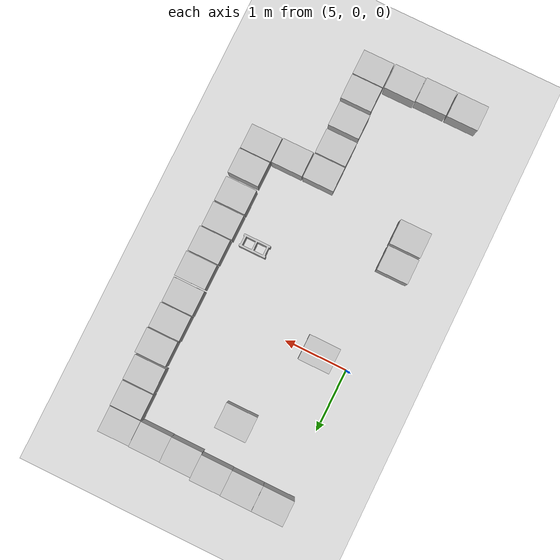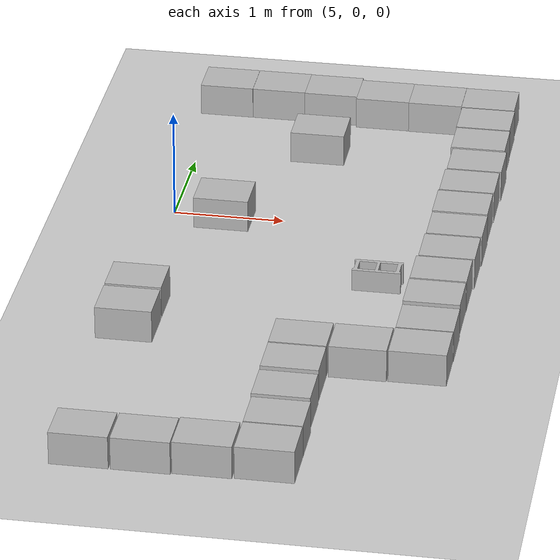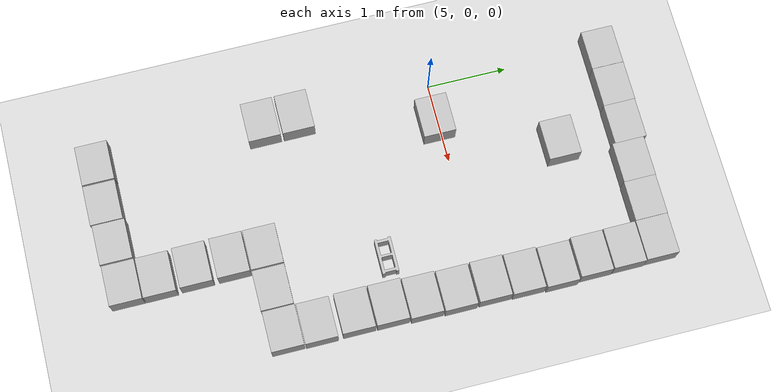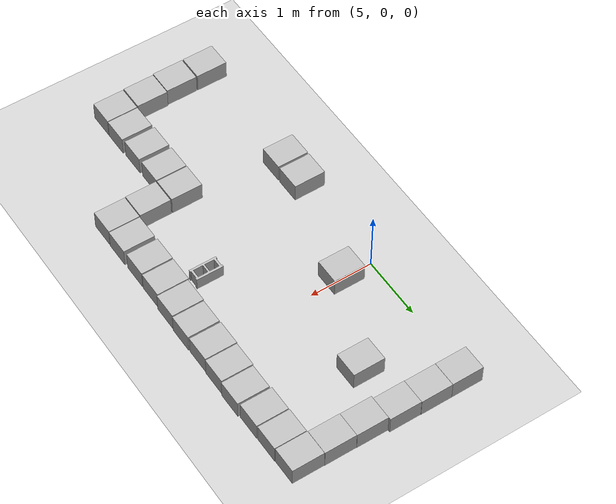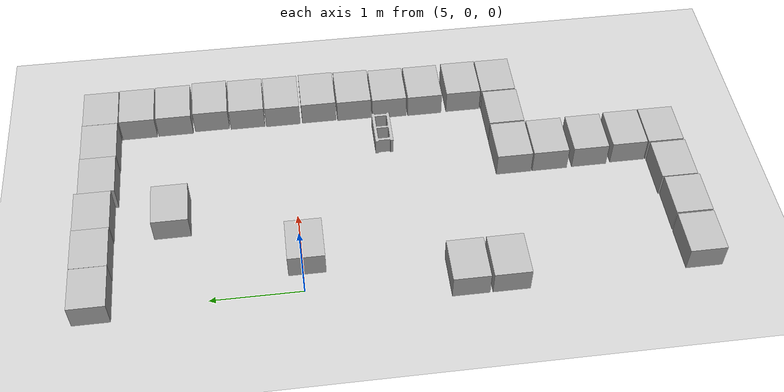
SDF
<sdf version="1.7">
 <world name="default">
  <model name="ground_plane">
   <static>1</static>
   <link name="link">
    <collision name="collision">
     <geometry><plane><normal>0 0 1</normal><size>100 100</size></plane></geometry>
     <surface>
      <contact><collide_bitmask>65535</collide_bitmask></contact>
      <friction><ode><mu>100</mu><mu2>50</mu2></ode></friction>
     </surface>
    </collision>
    <visual name="visual">
     <cast_shadows>0</cast_shadows>
     <geometry><plane><normal>0 0 1</normal><size>100 100</size></plane></geometry>
     <material>
      <script><uri>file://media/materials/scripts/gazebo.material</uri><name>Gazebo/Grey</name></script>
     </material>
    </visual>
   </link>
  </model>
  <model name="cardboard_box_19">
   <pose>5.11664 2.20462 0.149 -0 -0 -0.000112</pose>
   <link name="link">
    <inertial>
     <mass>2</mass>
     <inertia>
      <ixx>0.0416667</ixx>
      <ixy>0</ixy>
      <ixz>0</ixz>
      <iyy>0.0566667</iyy>
      <iyz>0</iyz>
      <izz>0.0683333</izz>
     </inertia>
    </inertial>
    <collision name="collision">
     <geometry><box><size>0.5 0.4 0.3</size></box></geometry>
     <surface>
      <friction><ode><mu>1</mu><mu2>1</mu2></ode></friction>
      <contact><ode><kp>1e+07</kp><kd>1</kd><min_depth>0.001</min_depth><max_vel>0.1</max_vel></ode></contact>
     </surface>
    </collision>
    <visual name="visual">
     <pose>0 0 -0.15 0 -0 0</pose>
     <geometry>
      <mesh><uri>model://cardboard_box/meshes/cardboard_box.dae</uri><scale>1.25932 1.00745 0.755591</scale></mesh>
     </geometry>
    </visual>
   </link>
  </model>
  <model name="cardboard_box_23">
   <pose>5.46744 -0.044152 0.149 0 0 -0.002165</pose>
   <link name="link">
    <inertial>
     <mass>2</mass>
     <inertia>
      <ixx>0.0416667</ixx>
      <ixy>0</ixy>
      <ixz>0</ixz>
      <iyy>0.0566667</iyy>
      <iyz>0</iyz>
      <izz>0.0683333</izz>
     </inertia>
    </inertial>
    <collision name="collision">
     <geometry><box><size>0.5 0.4 0.3</size></box></geometry>
     <surface>
      <friction><ode><mu>1</mu><mu2>1</mu2></ode></friction>
      <contact><ode><kp>1e+07</kp><kd>1</kd><min_depth>0.001</min_depth><max_vel>0.1</max_vel></ode></contact>
     </surface>
    </collision>
    <visual name="visual">
     <pose>0 0 -0.15 0 -0 0</pose>
     <geometry>
      <mesh><uri>model://cardboard_box/meshes/cardboard_box.dae</uri><scale>1.25932 1.00745 0.755591</scale></mesh>
     </geometry>
    </visual>
   </link>
  </model>
  <model name="cardboard_box_24">
   <pose>5.61747 2.20474 0.149 0 0 -0.000135</pose>
   <link name="link">
    <inertial>
     <mass>2</mass>
     <inertia>
      <ixx>0.0416667</ixx>
      <ixy>0</ixy>
      <ixz>0</ixz>
      <iyy>0.0566667</iyy>
      <iyz>0</iyz>
      <izz>0.0683333</izz>
     </inertia>
    </inertial>
    <collision name="collision">
     <geometry><box><size>0.5 0.4 0.3</size></box></geometry>
     <surface>
      <friction><ode><mu>1</mu><mu2>1</mu2></ode></friction>
      <contact><ode><kp>1e+07</kp><kd>1</kd><min_depth>0.001</min_depth><max_vel>0.1</max_vel></ode></contact>
     </surface>
    </collision>
    <visual name="visual">
     <pose>0 0 -0.15 0 -0 0</pose>
     <geometry>
      <mesh><uri>model://cardboard_box/meshes/cardboard_box.dae</uri><scale>1.25932 1.00745 0.755591</scale></mesh>
     </geometry>
    </visual>
   </link>
  </model>
  <model name="cardboard_box_25">
   <pose>6.11733 2.19989 0.149 0 -0 -0.000167</pose>
   <link name="link">
    <inertial>
     <mass>2</mass>
     <inertia>
      <ixx>0.0416667</ixx>
      <ixy>0</ixy>
      <ixz>0</ixz>
      <iyy>0.0566667</iyy>
      <iyz>0</iyz>
      <izz>0.0683333</izz>
     </inertia>
    </inertial>
    <collision name="collision">
     <geometry><box><size>0.5 0.4 0.3</size></box></geometry>
     <surface>
      <friction><ode><mu>1</mu><mu2>1</mu2></ode></friction>
      <contact><ode><kp>1e+07</kp><kd>1</kd><min_depth>0.001</min_depth><max_vel>0.1</max_vel></ode></contact>
     </surface>
    </collision>
    <visual name="visual">
     <pose>0 0 -0.15 0 -0 0</pose>
     <geometry>
      <mesh><uri>model://cardboard_box/meshes/cardboard_box.dae</uri><scale>1.25932 1.00745 0.755591</scale></mesh>
     </geometry>
    </visual>
   </link>
  </model>
  <model name="cardboard_box_27">
   <pose>6.61648 2.16214 0.149 0 0 -0.00019</pose>
   <link name="link">
    <inertial>
     <mass>2</mass>
     <inertia>
      <ixx>0.0416667</ixx>
      <ixy>0</ixy>
      <ixz>0</ixz>
      <iyy>0.0566667</iyy>
      <iyz>0</iyz>
      <izz>0.0683333</izz>
     </inertia>
    </inertial>
    <collision name="collision">
     <geometry><box><size>0.5 0.4 0.3</size></box></geometry>
     <surface>
      <friction><ode><mu>1</mu><mu2>1</mu2></ode></friction>
      <contact><ode><kp>1e+07</kp><kd>1</kd><min_depth>0.001</min_depth><max_vel>0.1</max_vel></ode></contact>
     </surface>
    </collision>
    <visual name="visual">
     <pose>0 0 -0.15 0 -0 0</pose>
     <geometry>
      <mesh><uri>model://cardboard_box/meshes/cardboard_box.dae</uri><scale>1.25932 1.00745 0.755591</scale></mesh>
     </geometry>
    </visual>
   </link>
  </model>
  <model name="cardboard_box_28">
   <pose>7.11635 2.15737 0.149 -0 -0 -0.000159</pose>
   <link name="link">
    <inertial>
     <mass>2</mass>
     <inertia>
      <ixx>0.0416667</ixx>
      <ixy>0</ixy>
      <ixz>0</ixz>
      <iyy>0.0566667</iyy>
      <iyz>0</iyz>
      <izz>0.0683333</izz>
     </inertia>
    </inertial>
    <collision name="collision">
     <geometry><box><size>0.5 0.4 0.3</size></box></geometry>
     <surface>
      <friction><ode><mu>1</mu><mu2>1</mu2></ode></friction>
      <contact><ode><kp>1e+07</kp><kd>1</kd><min_depth>0.001</min_depth><max_vel>0.1</max_vel></ode></contact>
     </surface>
    </collision>
    <visual name="visual">
     <pose>0 0 -0.15 0 -0 0</pose>
     <geometry>
      <mesh><uri>model://cardboard_box/meshes/cardboard_box.dae</uri><scale>1.25932 1.00745 0.755591</scale></mesh>
     </geometry>
    </visual>
   </link>
  </model>
  <model name="cardboard_box_29">
   <pose>7.61722 2.15258 0.149 0 0 -0.000135</pose>
   <link name="link">
    <inertial>
     <mass>2</mass>
     <inertia>
      <ixx>0.0416667</ixx>
      <ixy>0</ixy>
      <ixz>0</ixz>
      <iyy>0.0566667</iyy>
      <iyz>0</iyz>
      <izz>0.0683333</izz>
     </inertia>
    </inertial>
    <collision name="collision">
     <geometry><box><size>0.5 0.4 0.3</size></box></geometry>
     <surface>
      <friction><ode><mu>1</mu><mu2>1</mu2></ode></friction>
      <contact><ode><kp>1e+07</kp><kd>1</kd><min_depth>0.001</min_depth><max_vel>0.1</max_vel></ode></contact>
     </surface>
    </collision>
    <visual name="visual">
     <pose>0 0 -0.15 0 -0 0</pose>
     <geometry>
      <mesh><uri>model://cardboard_box/meshes/cardboard_box.dae</uri><scale>1.25932 1.00745 0.755591</scale></mesh>
     </geometry>
    </visual>
   </link>
  </model>
  <model name="cardboard_box_30">
   <pose>7.62325 1.74299 0.149 0 -0 0</pose>
   <link name="link">
    <inertial>
     <mass>2</mass>
     <inertia>
      <ixx>0.0416667</ixx>
      <ixy>0</ixy>
      <ixz>0</ixz>
      <iyy>0.0566667</iyy>
      <iyz>0</iyz>
      <izz>0.0683333</izz>
     </inertia>
    </inertial>
    <collision name="collision">
     <geometry><box><size>0.5 0.4 0.3</size></box></geometry>
     <surface>
      <friction><ode><mu>1</mu><mu2>1</mu2></ode></friction>
      <contact><ode><kp>1e+07</kp><kd>1</kd><min_depth>0.001</min_depth><max_vel>0.1</max_vel></ode></contact>
     </surface>
    </collision>
    <visual name="visual">
     <pose>0 0 -0.15 0 -0 0</pose>
     <geometry>
      <mesh><uri>model://cardboard_box/meshes/cardboard_box.dae</uri><scale>1.25932 1.00745 0.755591</scale></mesh>
     </geometry>
    </visual>
   </link>
  </model>
  <model name="cardboard_box_31">
   <pose>7.62793 1.32849 0.149 0 -0 0</pose>
   <link name="link">
    <inertial>
     <mass>2</mass>
     <inertia>
      <ixx>0.0416667</ixx>
      <ixy>0</ixy>
      <ixz>0</ixz>
      <iyy>0.0566667</iyy>
      <iyz>0</iyz>
      <izz>0.0683333</izz>
     </inertia>
    </inertial>
    <collision name="collision">
     <geometry><box><size>0.5 0.4 0.3</size></box></geometry>
     <surface>
      <friction><ode><mu>1</mu><mu2>1</mu2></ode></friction>
      <contact><ode><kp>1e+07</kp><kd>1</kd><min_depth>0.001</min_depth><max_vel>0.1</max_vel></ode></contact>
     </surface>
    </collision>
    <visual name="visual">
     <pose>0 0 -0.15 0 -0 0</pose>
     <geometry>
      <mesh><uri>model://cardboard_box/meshes/cardboard_box.dae</uri><scale>1.25932 1.00745 0.755591</scale></mesh>
     </geometry>
    </visual>
   </link>
  </model>
  <model name="cardboard_box_22">
   <pose>6.12158 1.3691 0.149 0 -0 0</pose>
   <link name="link">
    <inertial>
     <mass>2</mass>
     <inertia>
      <ixx>0.0416667</ixx>
      <ixy>0</ixy>
      <ixz>0</ixz>
      <iyy>0.0566667</iyy>
      <iyz>0</iyz>
      <izz>0.0683333</izz>
     </inertia>
    </inertial>
    <collision name="collision">
     <geometry><box><size>0.5 0.4 0.3</size></box></geometry>
     <surface>
      <friction><ode><mu>1</mu><mu2>1</mu2></ode></friction>
      <contact><ode><kp>1e+07</kp><kd>1</kd><min_depth>0.001</min_depth><max_vel>0.1</max_vel></ode></contact>
     </surface>
    </collision>
    <visual name="visual">
     <pose>0 0 -0.15 0 -0 0</pose>
     <geometry>
      <mesh><uri>model://cardboard_box/meshes/cardboard_box.dae</uri><scale>1.25932 1.00745 0.755591</scale></mesh>
     </geometry>
    </visual>
   </link>
  </model>
  <model name="cardboard_box_32">
   <pose>7.64853 0.903612 0.149 0 -0 0</pose>
   <link name="link">
    <inertial>
     <mass>2</mass>
     <inertia>
      <ixx>0.0416667</ixx>
      <ixy>0</ixy>
      <ixz>0</ixz>
      <iyy>0.0566667</iyy>
      <iyz>0</iyz>
      <izz>0.0683333</izz>
     </inertia>
    </inertial>
    <collision name="collision">
     <geometry><box><size>0.5 0.4 0.3</size></box></geometry>
     <surface>
      <friction><ode><mu>1</mu><mu2>1</mu2></ode></friction>
      <contact><ode><kp>1e+07</kp><kd>1</kd><min_depth>0.001</min_depth><max_vel>0.1</max_vel></ode></contact>
     </surface>
    </collision>
    <visual name="visual">
     <pose>0 0 -0.15 0 -0 0</pose>
     <geometry>
      <mesh><uri>model://cardboard_box/meshes/cardboard_box.dae</uri><scale>1.25932 1.00745 0.755591</scale></mesh>
     </geometry>
    </visual>
   </link>
  </model>
  <model name="cardboard_box_33">
   <pose>7.63463 0.487643 0.149 0 -0 0</pose>
   <link name="link">
    <inertial>
     <mass>2</mass>
     <inertia>
      <ixx>0.0416667</ixx>
      <ixy>0</ixy>
      <ixz>0</ixz>
      <iyy>0.0566667</iyy>
      <iyz>0</iyz>
      <izz>0.0683333</izz>
     </inertia>
    </inertial>
    <collision name="collision">
     <geometry><box><size>0.5 0.4 0.3</size></box></geometry>
     <surface>
      <friction><ode><mu>1</mu><mu2>1</mu2></ode></friction>
      <contact><ode><kp>1e+07</kp><kd>1</kd><min_depth>0.001</min_depth><max_vel>0.1</max_vel></ode></contact>
     </surface>
    </collision>
    <visual name="visual">
     <pose>0 0 -0.15 0 -0 0</pose>
     <geometry>
      <mesh><uri>model://cardboard_box/meshes/cardboard_box.dae</uri><scale>1.25932 1.00745 0.755591</scale></mesh>
     </geometry>
    </visual>
   </link>
  </model>
  <model name="cardboard_box_37">
   <pose>7.62607 0.072854 0.149 0 -0 0</pose>
   <link name="link">
    <inertial>
     <mass>2</mass>
     <inertia>
      <ixx>0.0416667</ixx>
      <ixy>0</ixy>
      <ixz>0</ixz>
      <iyy>0.0566667</iyy>
      <iyz>0</iyz>
      <izz>0.0683333</izz>
     </inertia>
    </inertial>
    <collision name="collision">
     <geometry><box><size>0.5 0.4 0.3</size></box></geometry>
     <surface>
      <friction><ode><mu>1</mu><mu2>1</mu2></ode></friction>
      <contact><ode><kp>1e+07</kp><kd>1</kd><min_depth>0.001</min_depth><max_vel>0.1</max_vel></ode></contact>
     </surface>
    </collision>
    <visual name="visual">
     <pose>0 0 -0.15 0 -0 0</pose>
     <geometry>
      <mesh><uri>model://cardboard_box/meshes/cardboard_box.dae</uri><scale>1.25932 1.00745 0.755591</scale></mesh>
     </geometry>
    </visual>
   </link>
  </model>
  <model name="cardboard_box_38">
   <pose>7.63121 -0.351382 0.149 0 -0 0</pose>
   <link name="link">
    <inertial>
     <mass>2</mass>
     <inertia>
      <ixx>0.0416667</ixx>
      <ixy>0</ixy>
      <ixz>0</ixz>
      <iyy>0.0566667</iyy>
      <iyz>0</iyz>
      <izz>0.0683333</izz>
     </inertia>
    </inertial>
    <collision name="collision">
     <geometry><box><size>0.5 0.4 0.3</size></box></geometry>
     <surface>
      <friction><ode><mu>1</mu><mu2>1</mu2></ode></friction>
      <contact><ode><kp>1e+07</kp><kd>1</kd><min_depth>0.001</min_depth><max_vel>0.1</max_vel></ode></contact>
     </surface>
    </collision>
    <visual name="visual">
     <pose>0 0 -0.15 0 -0 0</pose>
     <geometry>
      <mesh><uri>model://cardboard_box/meshes/cardboard_box.dae</uri><scale>1.25932 1.00745 0.755591</scale></mesh>
     </geometry>
    </visual>
   </link>
  </model>
  <model name="cardboard_box_39">
   <pose>7.62089 -0.767864 0.149 0 -0 0</pose>
   <link name="link">
    <inertial>
     <mass>2</mass>
     <inertia>
      <ixx>0.0416667</ixx>
      <ixy>0</ixy>
      <ixz>0</ixz>
      <iyy>0.0566667</iyy>
      <iyz>0</iyz>
      <izz>0.0683333</izz>
     </inertia>
    </inertial>
    <collision name="collision">
     <geometry><box><size>0.5 0.4 0.3</size></box></geometry>
     <surface>
      <friction><ode><mu>1</mu><mu2>1</mu2></ode></friction>
      <contact><ode><kp>1e+07</kp><kd>1</kd><min_depth>0.001</min_depth><max_vel>0.1</max_vel></ode></contact>
     </surface>
    </collision>
    <visual name="visual">
     <pose>0 0 -0.15 0 -0 0</pose>
     <geometry>
      <mesh><uri>model://cardboard_box/meshes/cardboard_box.dae</uri><scale>1.25932 1.00745 0.755591</scale></mesh>
     </geometry>
    </visual>
   </link>
  </model>
  <model name="cardboard_box_44">
   <pose>7.60276 -1.18176 0.149 0 -0 0</pose>
   <link name="link">
    <inertial>
     <mass>2</mass>
     <inertia>
      <ixx>0.0416667</ixx>
      <ixy>0</ixy>
      <ixz>0</ixz>
      <iyy>0.0566667</iyy>
      <iyz>0</iyz>
      <izz>0.0683333</izz>
     </inertia>
    </inertial>
    <collision name="collision">
     <geometry><box><size>0.5 0.4 0.3</size></box></geometry>
     <surface>
      <friction><ode><mu>1</mu><mu2>1</mu2></ode></friction>
      <contact><ode><kp>1e+07</kp><kd>1</kd><min_depth>0.001</min_depth><max_vel>0.1</max_vel></ode></contact>
     </surface>
    </collision>
    <visual name="visual">
     <pose>0 0 -0.15 0 -0 0</pose>
     <geometry>
      <mesh><uri>model://cardboard_box/meshes/cardboard_box.dae</uri><scale>1.25932 1.00745 0.755591</scale></mesh>
     </geometry>
    </visual>
   </link>
  </model>
  <model name="cardboard_box_51">
   <pose>7.60019 -1.60081 0.149 0 -0 0</pose>
   <link name="link">
    <inertial>
     <mass>2</mass>
     <inertia>
      <ixx>0.0416667</ixx>
      <ixy>0</ixy>
      <ixz>0</ixz>
      <iyy>0.0566667</iyy>
      <iyz>0</iyz>
      <izz>0.0683333</izz>
     </inertia>
    </inertial>
    <collision name="collision">
     <geometry><box><size>0.5 0.4 0.3</size></box></geometry>
     <surface>
      <friction><ode><mu>1</mu><mu2>1</mu2></ode></friction>
      <contact><ode><kp>1e+07</kp><kd>1</kd><min_depth>0.001</min_depth><max_vel>0.1</max_vel></ode></contact>
     </surface>
    </collision>
    <visual name="visual">
     <pose>0 0 -0.15 0 -0 0</pose>
     <geometry>
      <mesh><uri>model://cardboard_box/meshes/cardboard_box.dae</uri><scale>1.25932 1.00745 0.755591</scale></mesh>
     </geometry>
    </visual>
   </link>
  </model>
  <model name="cardboard_box_57">
   <pose>7.60797 -2.06127 0.149 0 -0 0</pose>
   <link name="link">
    <inertial>
     <mass>2</mass>
     <inertia>
      <ixx>0.0416667</ixx>
      <ixy>0</ixy>
      <ixz>0</ixz>
      <iyy>0.0566667</iyy>
      <iyz>0</iyz>
      <izz>0.0683333</izz>
     </inertia>
    </inertial>
    <collision name="collision">
     <geometry><box><size>0.5 0.4 0.3</size></box></geometry>
     <surface>
      <friction><ode><mu>1</mu><mu2>1</mu2></ode></friction>
      <contact><ode><kp>1e+07</kp><kd>1</kd><min_depth>0.001</min_depth><max_vel>0.1</max_vel></ode></contact>
     </surface>
    </collision>
    <visual name="visual">
     <pose>0 0 -0.15 0 -0 0</pose>
     <geometry>
      <mesh><uri>model://cardboard_box/meshes/cardboard_box.dae</uri><scale>1.25932 1.00745 0.755591</scale></mesh>
     </geometry>
    </visual>
   </link>
  </model>
  <model name="cinder_block">
   <link name="link">
    <inertial>
     <pose>0 0 0.1016 0 -0 0</pose>
     <mass>5</mass>
     <inertia>
      <ixx>0.028705</ixx>
      <ixy>0</ixy>
      <iyy>0.073708</iyy>
      <ixz>0</ixz>
      <iyz>0</iyz>
      <izz>0.06908</izz>
     </inertia>
    </inertial>
    <visual name="visual">
     <geometry><mesh><uri>model://cinder_block/meshes/cinder_block.dae</uri></mesh></geometry>
    </visual>
    <collision name="left">
     <pose>0 -0.08465 0.1016 0 -0 0</pose>
     <geometry><box><size>0.43495 0.0339 0.2032</size></box></geometry>
     <surface>
      <contact><ode><max_vel>0.1</max_vel><min_depth>0.001</min_depth></ode></contact>
      <friction><ode><mu>1</mu><mu2>1</mu2></ode></friction>
     </surface>
    </collision>
    <collision name="right">
     <pose>0 0.08465 0.1016 0 -0 0</pose>
     <geometry><box><size>0.43495 0.0339 0.2032</size></box></geometry>
     <surface>
      <contact><ode><max_vel>0.1</max_vel><min_depth>0.001</min_depth></ode></contact>
      <friction><ode><mu>1</mu><mu2>1</mu2></ode></friction>
     </surface>
    </collision>
    <collision name="front">
     <pose>0.18625 0 0.1016 0 -0 0</pose>
     <geometry><box><size>0.0339 0.1354 0.203</size></box></geometry>
     <surface>
      <contact><ode><max_vel>0.1</max_vel><min_depth>0.001</min_depth></ode></contact>
      <friction><ode><mu>1</mu><mu2>1</mu2></ode></friction>
     </surface>
    </collision>
    <collision name="middle">
     <pose>0 0 0.1016 0 -0 0</pose>
     <geometry><box><size>0.0339 0.1354 0.203</size></box></geometry>
     <surface>
      <contact><ode><max_vel>0.1</max_vel><min_depth>0.001</min_depth></ode></contact>
      <friction><ode><mu>1</mu><mu2>1</mu2></ode></friction>
     </surface>
    </collision>
    <collision name="back">
     <pose>-0.18625 0 0.1016 0 -0 0</pose>
     <geometry><box><size>0.0339 0.1354 0.203</size></box></geometry>
     <surface>
      <contact><ode><max_vel>0.1</max_vel><min_depth>0.001</min_depth></ode></contact>
      <friction><ode><mu>1</mu><mu2>1</mu2></ode></friction>
     </surface>
    </collision>
   </link>
   <pose>7.02389 -1.05977 -7e-06 1.7e-05 -2.4e-05 -3e-06</pose>
  </model>
  <model name="cardboard_box_34">
   <pose>7.60369 -2.47223 0.149 0 -0 0</pose>
   <link name="link">
    <inertial>
     <mass>2</mass>
     <inertia>
      <ixx>0.0416667</ixx>
      <ixy>0</ixy>
      <ixz>0</ixz>
      <iyy>0.0566667</iyy>
      <iyz>0</iyz>
      <izz>0.0683333</izz>
     </inertia>
    </inertial>
    <collision name="collision">
     <geometry><box><size>0.5 0.4 0.3</size></box></geometry>
     <surface>
      <friction><ode><mu>1</mu><mu2>1</mu2></ode></friction>
      <contact><ode><kp>1e+07</kp><kd>1</kd><min_depth>0.001</min_depth><max_vel>0.1</max_vel></ode></contact>
     </surface>
    </collision>
    <visual name="visual">
     <pose>0 0 -0.15 0 -0 0</pose>
     <geometry>
      <mesh><uri>model://cardboard_box/meshes/cardboard_box.dae</uri><scale>1.25932 1.00745 0.755591</scale></mesh>
     </geometry>
    </visual>
   </link>
  </model>
  <model name="cardboard_box_35">
   <pose>7.09143 -2.47971 0.149 0 -0 0</pose>
   <link name="link">
    <inertial>
     <mass>2</mass>
     <inertia>
      <ixx>0.0416667</ixx>
      <ixy>0</ixy>
      <ixz>0</ixz>
      <iyy>0.0566667</iyy>
      <iyz>0</iyz>
      <izz>0.0683333</izz>
     </inertia>
    </inertial>
    <collision name="collision">
     <geometry><box><size>0.5 0.4 0.3</size></box></geometry>
     <surface>
      <friction><ode><mu>1</mu><mu2>1</mu2></ode></friction>
      <contact><ode><kp>1e+07</kp><kd>1</kd><min_depth>0.001</min_depth><max_vel>0.1</max_vel></ode></contact>
     </surface>
    </collision>
    <visual name="visual">
     <pose>0 0 -0.15 0 -0 0</pose>
     <geometry>
      <mesh><uri>model://cardboard_box/meshes/cardboard_box.dae</uri><scale>1.25932 1.00745 0.755591</scale></mesh>
     </geometry>
    </visual>
   </link>
  </model>
  <model name="cardboard_box_36">
   <pose>6.57545 -2.47971 0.149 0 -0 0</pose>
   <link name="link">
    <inertial>
     <mass>2</mass>
     <inertia>
      <ixx>0.0416667</ixx>
      <ixy>0</ixy>
      <ixz>0</ixz>
      <iyy>0.0566667</iyy>
      <iyz>0</iyz>
      <izz>0.0683333</izz>
     </inertia>
    </inertial>
    <collision name="collision">
     <geometry><box><size>0.5 0.4 0.3</size></box></geometry>
     <surface>
      <friction><ode><mu>1</mu><mu2>1</mu2></ode></friction>
      <contact><ode><kp>1e+07</kp><kd>1</kd><min_depth>0.001</min_depth><max_vel>0.1</max_vel></ode></contact>
     </surface>
    </collision>
    <visual name="visual">
     <pose>0 0 -0.15 0 -0 0</pose>
     <geometry>
      <mesh><uri>model://cardboard_box/meshes/cardboard_box.dae</uri><scale>1.25932 1.00745 0.755591</scale></mesh>
     </geometry>
    </visual>
   </link>
  </model>
  <model name="cardboard_box_41">
   <pose>6.57633 -2.89406 0.149 0 -0 0</pose>
   <link name="link">
    <inertial>
     <mass>2</mass>
     <inertia>
      <ixx>0.0416667</ixx>
      <ixy>0</ixy>
      <ixz>0</ixz>
      <iyy>0.0566667</iyy>
      <iyz>0</iyz>
      <izz>0.0683333</izz>
     </inertia>
    </inertial>
    <collision name="collision">
     <geometry><box><size>0.5 0.4 0.3</size></box></geometry>
     <surface>
      <friction><ode><mu>1</mu><mu2>1</mu2></ode></friction>
      <contact><ode><kp>1e+07</kp><kd>1</kd><min_depth>0.001</min_depth><max_vel>0.1</max_vel></ode></contact>
     </surface>
    </collision>
    <visual name="visual">
     <pose>0 0 -0.15 0 -0 0</pose>
     <geometry>
      <mesh><uri>model://cardboard_box/meshes/cardboard_box.dae</uri><scale>1.25932 1.00745 0.755591</scale></mesh>
     </geometry>
    </visual>
   </link>
  </model>
  <model name="cardboard_box_42">
   <pose>6.58144 -3.35367 0.149 0 -0 0</pose>
   <link name="link">
    <inertial>
     <mass>2</mass>
     <inertia>
      <ixx>0.0416667</ixx>
      <ixy>0</ixy>
      <ixz>0</ixz>
      <iyy>0.0566667</iyy>
      <iyz>0</iyz>
      <izz>0.0683333</izz>
     </inertia>
    </inertial>
    <collision name="collision">
     <geometry><box><size>0.5 0.4 0.3</size></box></geometry>
     <surface>
      <friction><ode><mu>1</mu><mu2>1</mu2></ode></friction>
      <contact><ode><kp>1e+07</kp><kd>1</kd><min_depth>0.001</min_depth><max_vel>0.1</max_vel></ode></contact>
     </surface>
    </collision>
    <visual name="visual">
     <pose>0 0 -0.15 0 -0 0</pose>
     <geometry>
      <mesh><uri>model://cardboard_box/meshes/cardboard_box.dae</uri><scale>1.25932 1.00745 0.755591</scale></mesh>
     </geometry>
    </visual>
   </link>
  </model>
  <model name="cardboard_box_52">
   <pose>6.59423 -3.80309 0.149 0 -0 0</pose>
   <link name="link">
    <inertial>
     <mass>2</mass>
     <inertia>
      <ixx>0.0416667</ixx>
      <ixy>0</ixy>
      <ixz>0</ixz>
      <iyy>0.0566667</iyy>
      <iyz>0</iyz>
      <izz>0.0683333</izz>
     </inertia>
    </inertial>
    <collision name="collision">
     <geometry><box><size>0.5 0.4 0.3</size></box></geometry>
     <surface>
      <friction><ode><mu>1</mu><mu2>1</mu2></ode></friction>
      <contact><ode><kp>1e+07</kp><kd>1</kd><min_depth>0.001</min_depth><max_vel>0.1</max_vel></ode></contact>
     </surface>
    </collision>
    <visual name="visual">
     <pose>0 0 -0.15 0 -0 0</pose>
     <geometry>
      <mesh><uri>model://cardboard_box/meshes/cardboard_box.dae</uri><scale>1.25932 1.00745 0.755591</scale></mesh>
     </geometry>
    </visual>
   </link>
  </model>
  <model name="cardboard_box_60">
   <pose>6.59352 -4.21453 0.149 0 -0 0</pose>
   <link name="link">
    <inertial>
     <mass>2</mass>
     <inertia>
      <ixx>0.0416667</ixx>
      <ixy>0</ixy>
      <ixz>0</ixz>
      <iyy>0.0566667</iyy>
      <iyz>0</iyz>
      <izz>0.0683333</izz>
     </inertia>
    </inertial>
    <collision name="collision">
     <geometry><box><size>0.5 0.4 0.3</size></box></geometry>
     <surface>
      <friction><ode><mu>1</mu><mu2>1</mu2></ode></friction>
      <contact><ode><kp>1e+07</kp><kd>1</kd><min_depth>0.001</min_depth><max_vel>0.1</max_vel></ode></contact>
     </surface>
    </collision>
    <visual name="visual">
     <pose>0 0 -0.15 0 -0 0</pose>
     <geometry>
      <mesh><uri>model://cardboard_box/meshes/cardboard_box.dae</uri><scale>1.25932 1.00745 0.755591</scale></mesh>
     </geometry>
    </visual>
   </link>
  </model>
  <model name="cardboard_box_61">
   <pose>6.07652 -4.22428 0.149 0 -0 0</pose>
   <link name="link">
    <inertial>
     <mass>2</mass>
     <inertia>
      <ixx>0.0416667</ixx>
      <ixy>0</ixy>
      <ixz>0</ixz>
      <iyy>0.0566667</iyy>
      <iyz>0</iyz>
      <izz>0.0683333</izz>
     </inertia>
    </inertial>
    <collision name="collision">
     <geometry><box><size>0.5 0.4 0.3</size></box></geometry>
     <surface>
      <friction><ode><mu>1</mu><mu2>1</mu2></ode></friction>
      <contact><ode><kp>1e+07</kp><kd>1</kd><min_depth>0.001</min_depth><max_vel>0.1</max_vel></ode></contact>
     </surface>
    </collision>
    <visual name="visual">
     <pose>0 0 -0.15 0 -0 0</pose>
     <geometry>
      <mesh><uri>model://cardboard_box/meshes/cardboard_box.dae</uri><scale>1.25932 1.00745 0.755591</scale></mesh>
     </geometry>
    </visual>
   </link>
  </model>
  <model name="cardboard_box_62">
   <pose>5.56769 -4.24055 0.149 0 -0 0</pose>
   <link name="link">
    <inertial>
     <mass>2</mass>
     <inertia>
      <ixx>0.0416667</ixx>
      <ixy>0</ixy>
      <ixz>0</ixz>
      <iyy>0.0566667</iyy>
      <iyz>0</iyz>
      <izz>0.0683333</izz>
     </inertia>
    </inertial>
    <collision name="collision">
     <geometry><box><size>0.5 0.4 0.3</size></box></geometry>
     <surface>
      <friction><ode><mu>1</mu><mu2>1</mu2></ode></friction>
      <contact><ode><kp>1e+07</kp><kd>1</kd><min_depth>0.001</min_depth><max_vel>0.1</max_vel></ode></contact>
     </surface>
    </collision>
    <visual name="visual">
     <pose>0 0 -0.15 0 -0 0</pose>
     <geometry>
      <mesh><uri>model://cardboard_box/meshes/cardboard_box.dae</uri><scale>1.25932 1.00745 0.755591</scale></mesh>
     </geometry>
    </visual>
   </link>
  </model>
  <model name="cardboard_box_63">
   <pose>5.0499 -4.2409 0.149 0 -0 0</pose>
   <link name="link">
    <inertial>
     <mass>2</mass>
     <inertia>
      <ixx>0.0416667</ixx>
      <ixy>0</ixy>
      <ixz>0</ixz>
      <iyy>0.0566667</iyy>
      <iyz>0</iyz>
      <izz>0.0683333</izz>
     </inertia>
    </inertial>
    <collision name="collision">
     <geometry><box><size>0.5 0.4 0.3</size></box></geometry>
     <surface>
      <friction><ode><mu>1</mu><mu2>1</mu2></ode></friction>
      <contact><ode><kp>1e+07</kp><kd>1</kd><min_depth>0.001</min_depth><max_vel>0.1</max_vel></ode></contact>
     </surface>
    </collision>
    <visual name="visual">
     <pose>0 0 -0.15 0 -0 0</pose>
     <geometry>
      <mesh><uri>model://cardboard_box/meshes/cardboard_box.dae</uri><scale>1.25932 1.00745 0.755591</scale></mesh>
     </geometry>
    </visual>
   </link>
  </model>
  <model name="cardboard_box_50">
   <pose>5.00012 -1.72096 0.149 0 -0 0</pose>
   <link name="link">
    <inertial>
     <mass>2</mass>
     <inertia>
      <ixx>0.0416667</ixx>
      <ixy>0</ixy>
      <ixz>0</ixz>
      <iyy>0.0566667</iyy>
      <iyz>0</iyz>
      <izz>0.0683333</izz>
     </inertia>
    </inertial>
    <collision name="collision">
     <geometry><box><size>0.5 0.4 0.3</size></box></geometry>
     <surface>
      <friction><ode><mu>1</mu><mu2>1</mu2></ode></friction>
      <contact><ode><kp>1e+07</kp><kd>1</kd><min_depth>0.001</min_depth><max_vel>0.1</max_vel></ode></contact>
     </surface>
    </collision>
    <visual name="visual">
     <pose>0 0 -0.15 0 -0 0</pose>
     <geometry>
      <mesh><uri>model://cardboard_box/meshes/cardboard_box.dae</uri><scale>1.25932 1.00745 0.755591</scale></mesh>
     </geometry>
    </visual>
   </link>
  </model>
  <model name="cardboard_box_53">
   <pose>5.00012 -2.15135 0.149021 2e-06 -2e-06 -0</pose>
   <link name="link">
    <inertial>
     <mass>2</mass>
     <inertia>
      <ixx>0.0416667</ixx>
      <ixy>0</ixy>
      <ixz>0</ixz>
      <iyy>0.0566667</iyy>
      <iyz>0</iyz>
      <izz>0.0683333</izz>
     </inertia>
    </inertial>
    <collision name="collision">
     <geometry><box><size>0.5 0.4 0.3</size></box></geometry>
     <surface>
      <friction><ode><mu>1</mu><mu2>1</mu2></ode></friction>
      <contact><ode><kp>1e+07</kp><kd>1</kd><min_depth>0.001</min_depth><max_vel>0.1</max_vel></ode></contact>
     </surface>
    </collision>
    <visual name="visual">
     <pose>0 0 -0.15 0 -0 0</pose>
     <geometry>
      <mesh><uri>model://cardboard_box/meshes/cardboard_box.dae</uri><scale>1.25932 1.00745 0.755591</scale></mesh>
     </geometry>
    </visual>
   </link>
  </model>
 </world>
</sdf>
